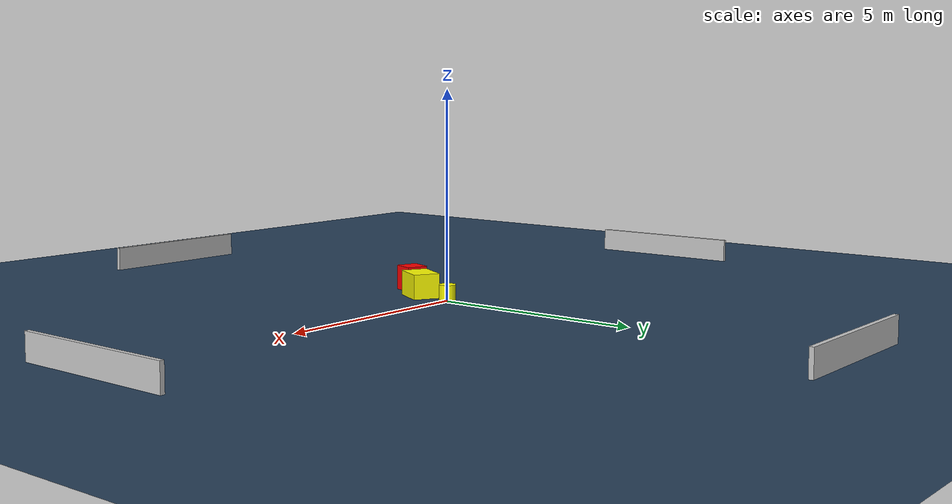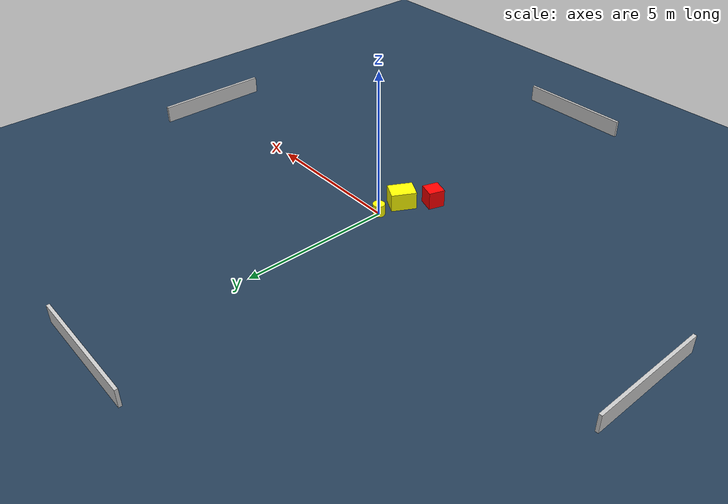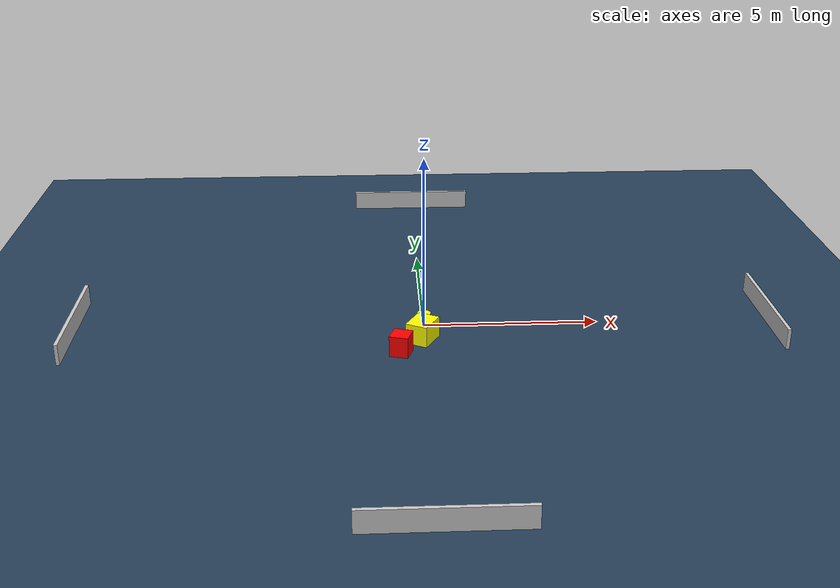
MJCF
<?xml version="1.0" ?>
<mujoco model="generated_environment">
  <option timestep="0.01" integrator="RK4" cone="elliptic"/>
  <default>
    <geom density="1"/>
  </default>
  <asset>
    <texture builtin="gradient" height="3072" name="skybox" rgb1="0.3 0.5 0.7" rgb2="0 0 0" type="skybox" width="512"/>
    <texture builtin="checker" height="300" name="groundplane" rgb1="0.2 0.3 0.4" rgb2="0.1 0.2 0.3" type="2d" width="300"/>
    <material name="groundplane" reflectance="0.2" texrepeat="5 5" texture="groundplane"/>
  </asset>
  <worldbody>
    <light dir="0 0 -1" directional="true" pos="0 0 1.5"/>
    <geom condim="3" friction="0.5 0.005 0.001" material="groundplane" name="floor" pos="0 0 0" size="0 0 0.05" type="plane"/>
    <body name="walls">
      <geom name="wall_1" condim="4" pos="-10.0 0.0 0.3" rgba="0.800000011920929 0.800000011920929 0.800000011920929 1.0" size="0.05 2.0 0.3" type="box"/>
      <geom name="wall_2" condim="4" pos="10.0 0.0 0.3" rgba="0.800000011920929 0.800000011920929 0.800000011920929 1.0" size="0.05 2.0 0.3" type="box"/>
      <geom name="wall_3" condim="4" pos="0.0 -10.0 0.3" rgba="0.800000011920929 0.800000011920929 0.800000011920929 1.0" size="2.0 0.05 0.3" type="box"/>
      <geom name="wall_4" condim="4" pos="0.0 10.0 0.3" rgba="0.800000011920929 0.800000011920929 0.800000011920929 1.0" size="2.0 0.05 0.3" type="box"/>
    </body>
    <body name="robot">
      <joint name="joint_x" type="slide" pos="0 0 0" axis="1 0 0"/>
      <joint name="joint_y" type="slide" pos="0 0 0" axis="0 1 0"/>
      <geom name="robot" type="cylinder" pos="0.0 0.0 0.2" size="0.2 0.2 0.0" mass="5.0" friction="1.0 0.005 0.0001" condim="4" rgba="1.0 1.0 0.0 1.0"/>
    </body>
    <body name="obstacle_1_movable">
      <geom name="obstacle_1_movable" condim="4" pos="-0.08275441160099394 -0.91709845977011 0.3" euler="0 0 151.42033691892314" friction="0.0 0.005 0.001" rgba="1.0 1.0 0.0 1.0" size="0.3234612968123129 0.4191927721134355 0.3" type="box" mass="0.1"/>
      <joint type="free"/>
    </body>
    <body name="obstacle_2_static">
      <geom name="obstacle_2_static" condim="4" pos="-0.7121930988390397 -1.733768465609065 0.3" euler="0 0 252.0507204385045" friction="0.0 0.005 0.001" rgba="1.0 0.0 0.0 1.0" size="0.27198415862128084 0.26939158048527323 0.3" type="box"/>
    </body>
  </worldbody>
  <actuator>
    <motor name="actuator_x" joint="joint_x" gear="1" ctrlrange="-1 1"/>
    <motor name="actuator_y" joint="joint_y" gear="1" ctrlrange="-1 1"/>
  </actuator>
</mujoco>
